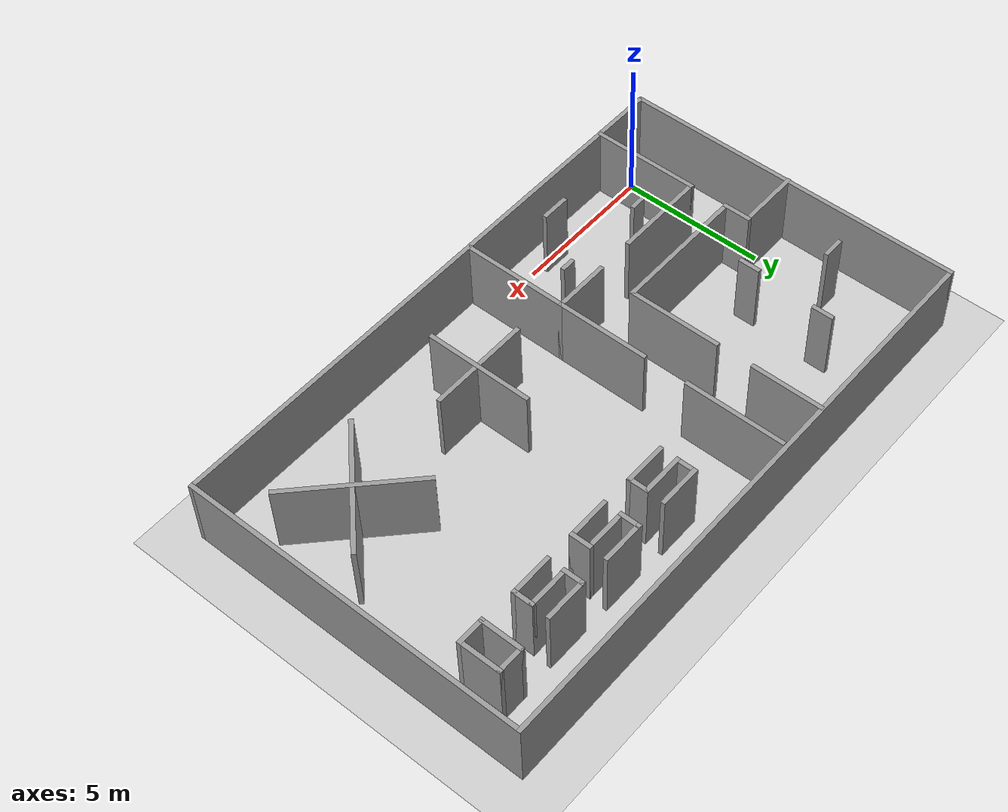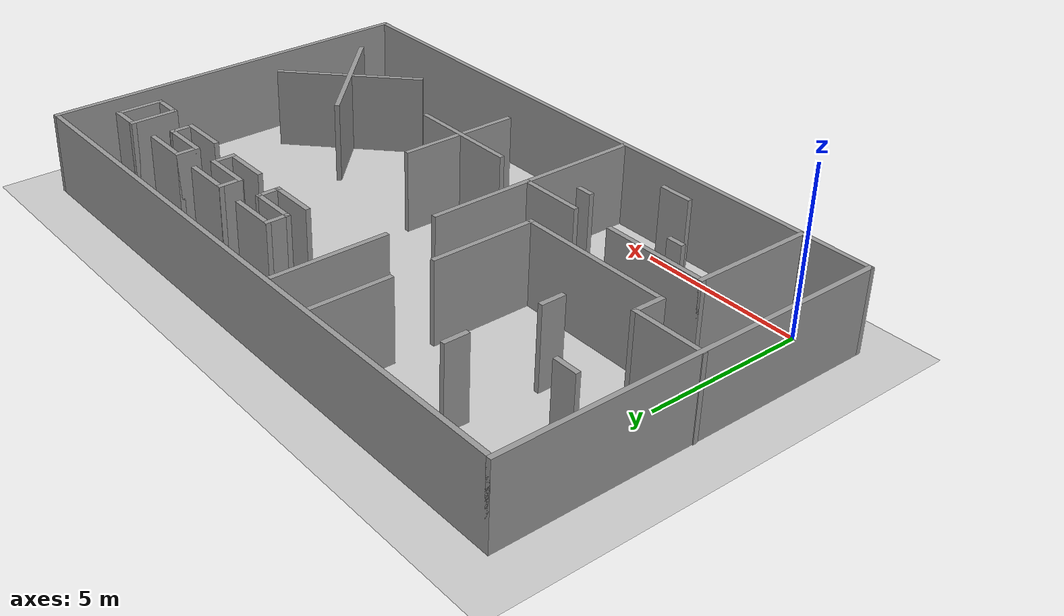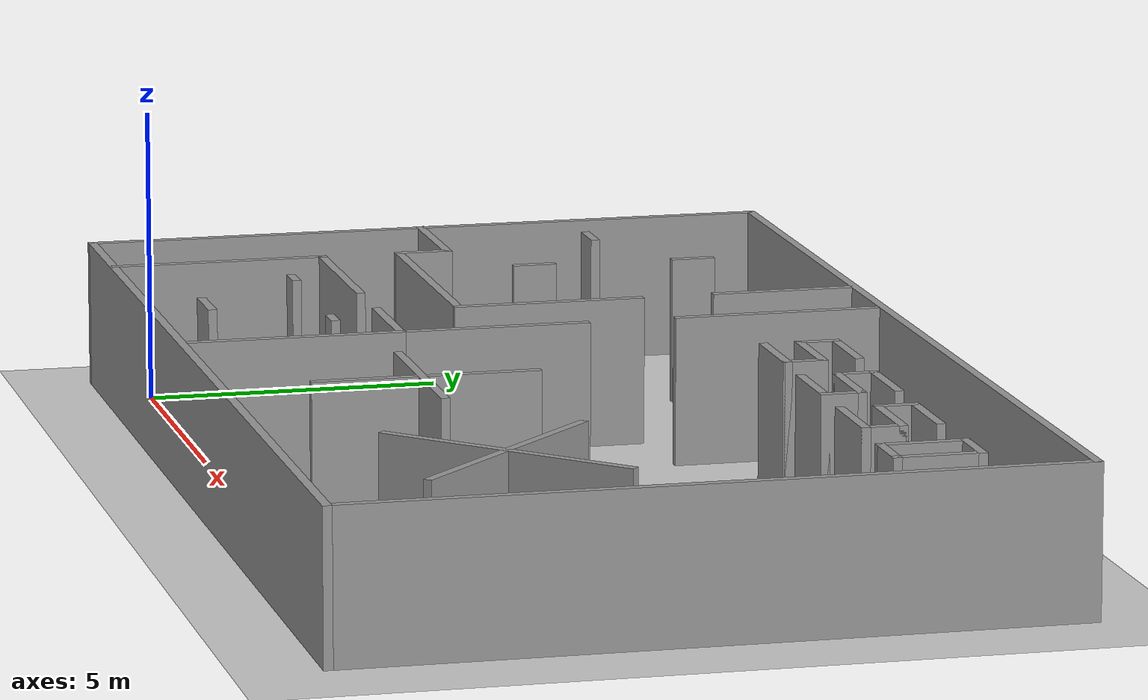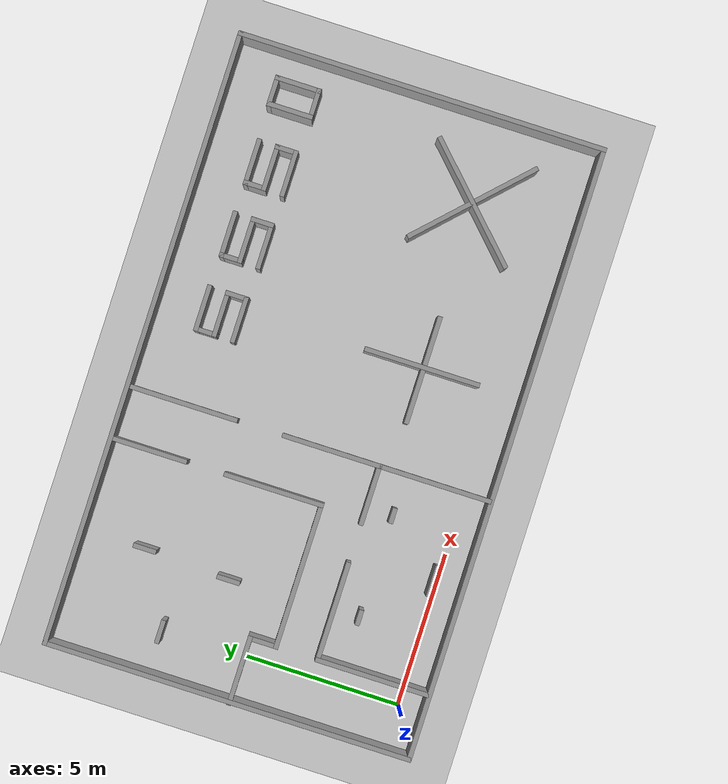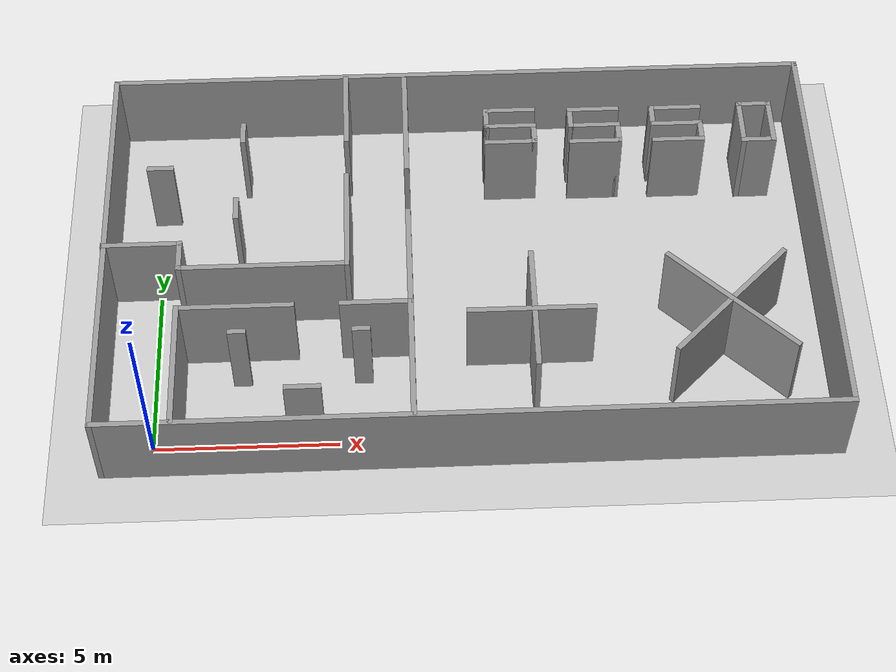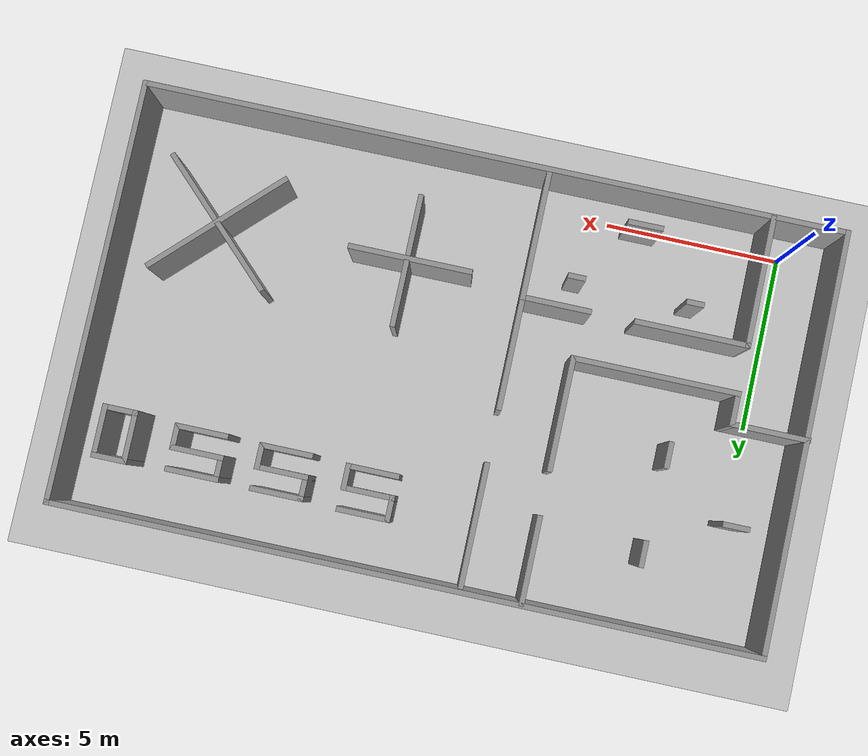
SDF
<sdf version="1.7">
 <world name="default">
  <light name="sun" type="directional">
   <pose>0 0 10 0 -0 0</pose>
   <diffuse>0.8 0.8 0.8 1</diffuse>
   <specular>0.2 0.2 0.2 1</specular>
   <attenuation>
    <range>1000</range>
    <constant>0.9</constant>
    <linear>0.01</linear>
    <quadratic>0.001</quadratic>
   </attenuation>
   <direction>-0.5 0.1 -0.9</direction>
   <spot><inner_angle>0</inner_angle><outer_angle>0</outer_angle><falloff>0</falloff></spot>
  </light>
  <model name="ground_plane">
   <static>1</static>
   <link name="link">
    <collision name="collision">
     <geometry><plane><normal>0 0 1</normal><size>100 100</size></plane></geometry>
     <surface><friction><ode><mu>100</mu><mu2>50</mu2></ode></friction></surface>
    </collision>
    <visual name="visual">
     <cast_shadows>0</cast_shadows>
     <geometry><plane><normal>0 0 1</normal><size>100 100</size></plane></geometry>
     <material>
      <script><uri>file://media/materials/scripts/gazebo.material</uri><name>Gazebo/Grey</name></script>
     </material>
    </visual>
   </link>
  </model>
  <gravity>0 0 -9.8</gravity>
  <magnetic_field>6e-06 2.3e-05 -4.2e-05</magnetic_field>
  <atmosphere type="adiabatic"/>
  <physics type="ode">
   <max_step_size>0.001</max_step_size>
   <real_time_factor>1</real_time_factor>
   <real_time_update_rate>1000</real_time_update_rate>
  </physics>
  <scene><ambient>0.4 0.4 0.4 1</ambient><background>0.7 0.7 0.7 1</background><shadows>1</shadows></scene>
  <audio><device>default</device></audio>
  <spherical_coordinates>
   <surface_model>EARTH_WGS84</surface_model>
   <latitude_deg>0</latitude_deg>
   <longitude_deg>0</longitude_deg>
   <elevation>0</elevation>
   <heading_deg>0</heading_deg>
  </spherical_coordinates>
  <model name="Untitled">
   <pose>8.55926 5.17525 0 0 -0 0</pose>
   <link name="Wall_1">
    <collision name="Wall_1_Collision">
     <geometry><box><size>20 0.15 2.5</size></box></geometry>
     <pose>0 0 1.25 0 -0 0</pose>
    </collision>
    <visual name="Wall_1_Visual">
     <pose>0 0 1.25 0 -0 0</pose>
     <geometry><box><size>20 0.15 2.5</size></box></geometry>
     <material>
      <script><uri>file://media/materials/scripts/gazebo.material</uri><name>Gazebo/Grey</name></script>
      <ambient>1 1 1 1</ambient>
     </material>
     <meta><layer>0</layer></meta>
    </visual>
    <pose>0.012591 5.925 0 0 -0 0</pose>
   </link>
   <link name="Wall_11">
    <collision name="Wall_11_Collision">
     <geometry><box><size>2.25 0.15 2.5</size></box></geometry>
     <pose>0 0 1.25 0 -0 0</pose>
    </collision>
    <visual name="Wall_11_Visual">
     <pose>0 0 1.25 0 -0 0</pose>
     <geometry><box><size>2.25 0.15 2.5</size></box></geometry>
     <material>
      <script><uri>file://media/materials/scripts/gazebo.material</uri><name>Gazebo/Grey</name></script>
      <ambient>1 1 1 1</ambient>
     </material>
     <meta><layer>0</layer></meta>
    </visual>
    <pose>-8.88759 -0.085488 0 0 -0 3.14159</pose>
   </link>
   <link name="Wall_13">
    <collision name="Wall_13_Collision">
     <geometry><box><size>1 0.15 2.5</size></box></geometry>
     <pose>0 0 1.25 0 -0 0</pose>
    </collision>
    <visual name="Wall_13_Visual">
     <pose>0 0 1.25 0 -0 0</pose>
     <geometry><box><size>1 0.15 2.5</size></box></geometry>
     <material>
      <script><uri>file://media/materials/scripts/gazebo.material</uri><name>Gazebo/Grey</name></script>
      <ambient>1 1 1 1</ambient>
     </material>
     <meta><layer>0</layer></meta>
    </visual>
    <pose>-7.83759 -0.510489 0 0 -0 -1.5708</pose>
   </link>
   <link name="Wall_15">
    <collision name="Wall_15_Collision">
     <geometry><box><size>3.75 0.15 2.5</size></box></geometry>
     <pose>0 0 1.25 0 -0 0</pose>
    </collision>
    <visual name="Wall_15_Visual">
     <pose>0 0 1.25 0 -0 0</pose>
     <geometry><box><size>3.75 0.15 2.5</size></box></geometry>
     <material>
      <script><uri>file://media/materials/scripts/gazebo.material</uri><name>Gazebo/Grey</name></script>
      <ambient>1 1 1 1</ambient>
     </material>
     <meta><layer>0</layer></meta>
    </visual>
    <pose>-7.83759 -4.08549 0 0 -0 -1.5708</pose>
   </link>
   <link name="Wall_17">
    <collision name="Wall_17_Collision">
     <geometry><box><size>3.25 0.15 2.5</size></box></geometry>
     <pose>0 0 1.25 0 -0 0</pose>
    </collision>
    <visual name="Wall_17_Visual">
     <pose>0 0 1.25 0 -0 0</pose>
     <geometry><box><size>3.25 0.15 2.5</size></box></geometry>
     <material>
      <script><uri>file://media/materials/scripts/gazebo.material</uri><name>Gazebo/Grey</name></script>
      <ambient>1 1 1 1</ambient>
     </material>
     <meta><layer>0</layer></meta>
    </visual>
    <pose>-6.28759 -2.28549 0 0 -0 0</pose>
   </link>
   <link name="Wall_19">
    <collision name="Wall_19_Collision">
     <geometry><box><size>2 0.15 2.5</size></box></geometry>
     <pose>0 0 1.25 0 -0 0</pose>
    </collision>
    <visual name="Wall_19_Visual">
     <pose>0 0 1.25 0 -0 0</pose>
     <geometry><box><size>2 0.15 2.5</size></box></geometry>
     <material>
      <script><uri>file://media/materials/scripts/gazebo.material</uri><name>Gazebo/Grey</name></script>
      <ambient>1 1 1 1</ambient>
     </material>
     <meta><layer>0</layer></meta>
    </visual>
    <pose>-2.46259 -2.28549 0 0 -0 0</pose>
   </link>
   <link name="Wall_2">
    <collision name="Wall_2_Collision">
     <geometry><box><size>12 0.15 2.5</size></box></geometry>
     <pose>0 0 1.25 0 -0 0</pose>
    </collision>
    <visual name="Wall_2_Visual">
     <pose>0 0 1.25 0 -0 0</pose>
     <geometry><box><size>12 0.15 2.5</size></box></geometry>
     <material>
      <script><uri>file://media/materials/scripts/gazebo.material</uri><name>Gazebo/Grey</name></script>
      <ambient>1 1 1 1</ambient>
     </material>
     <meta><layer>0</layer></meta>
    </visual>
    <pose>9.93759 -0 0 0 -0 -1.5708</pose>
   </link>
   <link name="Wall_20">
    <collision name="Wall_20_Collision">
     <geometry><box><size>3.75 0.15 2.5</size></box></geometry>
     <pose>0 0 1.25 0 -0 0</pose>
    </collision>
    <visual name="Wall_20_Visual">
     <pose>0 0 1.25 0 -0 0</pose>
     <geometry><box><size>3.75 0.15 2.5</size></box></geometry>
     <material>
      <script><uri>file://media/materials/scripts/gazebo.material</uri><name>Gazebo/Grey</name></script>
      <ambient>1 1 1 1</ambient>
     </material>
     <meta><layer>0</layer></meta>
    </visual>
    <pose>-1.53759 -4.08549 0 0 -0 -1.5708</pose>
   </link>
   <link name="Wall_22">
    <collision name="Wall_22_Collision">
     <geometry><box><size>4.75 0.15 2.5</size></box></geometry>
     <pose>0 0 1.25 0 -0 0</pose>
    </collision>
    <visual name="Wall_22_Visual">
     <pose>0 0 1.25 0 -0 0</pose>
     <geometry><box><size>4.75 0.15 2.5</size></box></geometry>
     <material>
      <script><uri>file://media/materials/scripts/gazebo.material</uri><name>Gazebo/Grey</name></script>
      <ambient>1 1 1 1</ambient>
     </material>
     <meta><layer>0</layer></meta>
    </visual>
    <pose>-5.53759 -0.935488 0 0 -0 0</pose>
   </link>
   <link name="Wall_23">
    <collision name="Wall_23_Collision">
     <geometry><box><size>3.25 0.15 2.5</size></box></geometry>
     <pose>0 0 1.25 0 -0 0</pose>
    </collision>
    <visual name="Wall_23_Visual">
     <pose>0 0 1.25 0 -0 0</pose>
     <geometry><box><size>3.25 0.15 2.5</size></box></geometry>
     <material>
      <script><uri>file://media/materials/scripts/gazebo.material</uri><name>Gazebo/Grey</name></script>
      <ambient>1 1 1 1</ambient>
     </material>
     <meta><layer>0</layer></meta>
    </visual>
    <pose>-3.23759 0.614511 0 0 -0 1.5708</pose>
   </link>
   <link name="Wall_25">
    <collision name="Wall_25_Collision">
     <geometry><box><size>2.5 0.15 2.5</size></box></geometry>
     <pose>0 0 1.25 0 -0 0</pose>
    </collision>
    <visual name="Wall_25_Visual">
     <pose>0 0 1.25 0 -0 0</pose>
     <geometry><box><size>2.5 0.15 2.5</size></box></geometry>
     <material>
      <script><uri>file://media/materials/scripts/gazebo.material</uri><name>Gazebo/Grey</name></script>
      <ambient>1 1 1 1</ambient>
     </material>
     <meta><layer>0</layer></meta>
    </visual>
    <pose>-3.23759 4.68951 0 0 -0 1.5708</pose>
   </link>
   <link name="Wall_27">
    <collision name="Wall_27_Collision">
     <geometry><box><size>3.25 0.15 2.5</size></box></geometry>
     <pose>0 0 1.25 0 -0 0</pose>
    </collision>
    <visual name="Wall_27_Visual">
     <pose>0 0 1.25 0 -0 0</pose>
     <geometry><box><size>3.25 0.15 2.5</size></box></geometry>
     <material>
      <script><uri>file://media/materials/scripts/gazebo.material</uri><name>Gazebo/Grey</name></script>
      <ambient>1 1 1 1</ambient>
     </material>
     <meta><layer>0</layer></meta>
    </visual>
    <pose>-1.53759 -0.735488 0 0 -0 1.5708</pose>
   </link>
   <link name="Wall_29">
    <collision name="Wall_29_Collision">
     <geometry><box><size>3.5 0.15 2.5</size></box></geometry>
     <pose>0 0 1.25 0 -0 0</pose>
    </collision>
    <visual name="Wall_29_Visual">
     <pose>0 0 1.25 0 -0 0</pose>
     <geometry><box><size>3.5 0.15 2.5</size></box></geometry>
     <material>
      <script><uri>file://media/materials/scripts/gazebo.material</uri><name>Gazebo/Grey</name></script>
      <ambient>1 1 1 1</ambient>
     </material>
     <meta><layer>0</layer></meta>
    </visual>
    <pose>-1.53759 4.08951 0 0 -0 1.5708</pose>
   </link>
   <link name="Wall_3">
    <collision name="Wall_3_Collision">
     <geometry><box><size>20 0.15 2.5</size></box></geometry>
     <pose>0 0 1.25 0 -0 0</pose>
    </collision>
    <visual name="Wall_3_Visual">
     <pose>0 0 1.25 0 -0 0</pose>
     <geometry><box><size>20 0.15 2.5</size></box></geometry>
     <material>
      <script><uri>file://media/materials/scripts/gazebo.material</uri><name>Gazebo/Grey</name></script>
      <ambient>1 1 1 1</ambient>
     </material>
     <meta><layer>0</layer></meta>
    </visual>
    <pose>0.012591 -5.925 0 0 -0 3.14159</pose>
   </link>
   <link name="Wall_31">
    <collision name="Wall_31_Collision">
     <geometry><box><size>1.5 0.15 2.5</size></box></geometry>
     <pose>0 0 1.25 0 -0 0</pose>
    </collision>
    <visual name="Wall_31_Visual">
     <pose>0 0 1.25 0 -0 0</pose>
     <geometry><box><size>1.5 0.15 2.5</size></box></geometry>
     <material>
      <script><uri>file://media/materials/scripts/gazebo.material</uri><name>Gazebo/Grey</name></script>
      <ambient>1 1 1 1</ambient>
     </material>
     <meta><layer>0</layer></meta>
    </visual>
    <pose>1.46248 4.43539 0 0 -0 3.14159</pose>
   </link>
   <link name="Wall_32">
    <collision name="Wall_32_Collision">
     <geometry><box><size>0.75 0.15 2.5</size></box></geometry>
     <pose>0 0 1.25 0 -0 0</pose>
    </collision>
    <visual name="Wall_32_Visual">
     <pose>0 0 1.25 0 -0 0</pose>
     <geometry><box><size>0.75 0.15 2.5</size></box></geometry>
     <material>
      <script><uri>file://media/materials/scripts/gazebo.material</uri><name>Gazebo/Grey</name></script>
      <ambient>1 1 1 1</ambient>
     </material>
     <meta><layer>0</layer></meta>
    </visual>
    <pose>0.787482 4.13539 0 0 -0 -1.5708</pose>
   </link>
   <link name="Wall_33">
    <collision name="Wall_33_Collision">
     <geometry><box><size>1.5 0.15 2.5</size></box></geometry>
     <pose>0 0 1.25 0 -0 0</pose>
    </collision>
    <visual name="Wall_33_Visual">
     <pose>0 0 1.25 0 -0 0</pose>
     <geometry><box><size>1.5 0.15 2.5</size></box></geometry>
     <material>
      <script><uri>file://media/materials/scripts/gazebo.material</uri><name>Gazebo/Grey</name></script>
      <ambient>1 1 1 1</ambient>
     </material>
     <meta><layer>0</layer></meta>
    </visual>
    <pose>1.46248 3.83539 0 0 -0 0</pose>
   </link>
   <link name="Wall_34">
    <collision name="Wall_34_Collision">
     <geometry><box><size>0.75 0.15 2.5</size></box></geometry>
     <pose>0 0 1.25 0 -0 0</pose>
    </collision>
    <visual name="Wall_34_Visual">
     <pose>0 0 1.25 0 -0 0</pose>
     <geometry><box><size>0.75 0.15 2.5</size></box></geometry>
     <material>
      <script><uri>file://media/materials/scripts/gazebo.material</uri><name>Gazebo/Grey</name></script>
      <ambient>1 1 1 1</ambient>
     </material>
     <meta><layer>0</layer></meta>
    </visual>
    <pose>2.13748 3.53539 0 0 -0 -1.5708</pose>
   </link>
   <link name="Wall_35">
    <collision name="Wall_35_Collision">
     <geometry><box><size>1.5 0.15 2.5</size></box></geometry>
     <pose>0 0 1.25 0 -0 0</pose>
    </collision>
    <visual name="Wall_35_Visual">
     <pose>0 0 1.25 0 -0 0</pose>
     <geometry><box><size>1.5 0.15 2.5</size></box></geometry>
     <material>
      <script><uri>file://media/materials/scripts/gazebo.material</uri><name>Gazebo/Grey</name></script>
      <ambient>1 1 1 1</ambient>
     </material>
     <meta><layer>0</layer></meta>
    </visual>
    <pose>1.46248 3.23539 0 0 -0 3.14159</pose>
   </link>
   <link name="Wall_37">
    <collision name="Wall_37_Collision">
     <geometry><box><size>1.5 0.15 2.5</size></box></geometry>
     <pose>0 0 1.25 0 -0 0</pose>
    </collision>
    <visual name="Wall_37_Visual">
     <pose>0 0 1.25 0 -0 0</pose>
     <geometry><box><size>1.5 0.15 2.5</size></box></geometry>
     <material>
      <script><uri>file://media/materials/scripts/gazebo.material</uri><name>Gazebo/Grey</name></script>
      <ambient>1 1 1 1</ambient>
     </material>
     <meta><layer>0</layer></meta>
    </visual>
    <pose>3.8831 4.38219 0 0 -0 3.14159</pose>
   </link>
   <link name="Wall_38">
    <collision name="Wall_38_Collision">
     <geometry><box><size>0.75 0.15 2.5</size></box></geometry>
     <pose>0 0 1.25 0 -0 0</pose>
    </collision>
    <visual name="Wall_38_Visual">
     <pose>0 0 1.25 0 -0 0</pose>
     <geometry><box><size>0.75 0.15 2.5</size></box></geometry>
     <material>
      <script><uri>file://media/materials/scripts/gazebo.material</uri><name>Gazebo/Grey</name></script>
      <ambient>1 1 1 1</ambient>
     </material>
     <meta><layer>0</layer></meta>
    </visual>
    <pose>3.2081 4.08219 0 0 -0 -1.5708</pose>
   </link>
   <link name="Wall_39">
    <collision name="Wall_39_Collision">
     <geometry><box><size>1.5 0.15 2.5</size></box></geometry>
     <pose>0 0 1.25 0 -0 0</pose>
    </collision>
    <visual name="Wall_39_Visual">
     <pose>0 0 1.25 0 -0 0</pose>
     <geometry><box><size>1.5 0.15 2.5</size></box></geometry>
     <material>
      <script><uri>file://media/materials/scripts/gazebo.material</uri><name>Gazebo/Grey</name></script>
      <ambient>1 1 1 1</ambient>
     </material>
     <meta><layer>0</layer></meta>
    </visual>
    <pose>3.8831 3.78219 0 0 -0 0</pose>
   </link>
   <link name="Wall_4">
    <collision name="Wall_4_Collision">
     <geometry><box><size>12 0.15 2.5</size></box></geometry>
     <pose>0 0 1.25 0 -0 0</pose>
    </collision>
    <visual name="Wall_4_Visual">
     <pose>0 0 1.25 0 -0 0</pose>
     <geometry><box><size>12 0.15 2.5</size></box></geometry>
     <material>
      <script><uri>file://media/materials/scripts/gazebo.material</uri><name>Gazebo/Grey</name></script>
      <ambient>1 1 1 1</ambient>
     </material>
     <meta><layer>0</layer></meta>
    </visual>
    <pose>-9.91241 -0 0 0 -0 1.5708</pose>
   </link>
   <link name="Wall_40">
    <collision name="Wall_40_Collision">
     <geometry><box><size>0.75 0.15 2.5</size></box></geometry>
     <pose>0 0 1.25 0 -0 0</pose>
    </collision>
    <visual name="Wall_40_Visual">
     <pose>0 0 1.25 0 -0 0</pose>
     <geometry><box><size>0.75 0.15 2.5</size></box></geometry>
     <material>
      <script><uri>file://media/materials/scripts/gazebo.material</uri><name>Gazebo/Grey</name></script>
      <ambient>1 1 1 1</ambient>
     </material>
     <meta><layer>0</layer></meta>
    </visual>
    <pose>4.5581 3.48219 0 0 -0 -1.5708</pose>
   </link>
   <link name="Wall_41">
    <collision name="Wall_41_Collision">
     <geometry><box><size>1.5 0.15 2.5</size></box></geometry>
     <pose>0 0 1.25 0 -0 0</pose>
    </collision>
    <visual name="Wall_41_Visual">
     <pose>0 0 1.25 0 -0 0</pose>
     <geometry><box><size>1.5 0.15 2.5</size></box></geometry>
     <material>
      <script><uri>file://media/materials/scripts/gazebo.material</uri><name>Gazebo/Grey</name></script>
      <ambient>1 1 1 1</ambient>
     </material>
     <meta><layer>0</layer></meta>
    </visual>
    <pose>3.8831 3.18219 0 0 -0 3.14159</pose>
   </link>
   <link name="Wall_43">
    <collision name="Wall_43_Collision">
     <geometry><box><size>1.5 0.15 2.5</size></box></geometry>
     <pose>0 0 1.25 0 -0 0</pose>
    </collision>
    <visual name="Wall_43_Visual">
     <pose>0 0 1.25 0 -0 0</pose>
     <geometry><box><size>1.5 0.15 2.5</size></box></geometry>
     <material>
      <script><uri>file://media/materials/scripts/gazebo.material</uri><name>Gazebo/Grey</name></script>
      <ambient>1 1 1 1</ambient>
     </material>
     <meta><layer>0</layer></meta>
    </visual>
    <pose>6.25052 4.35559 0 0 -0 3.14159</pose>
   </link>
   <link name="Wall_44">
    <collision name="Wall_44_Collision">
     <geometry><box><size>0.75 0.15 2.5</size></box></geometry>
     <pose>0 0 1.25 0 -0 0</pose>
    </collision>
    <visual name="Wall_44_Visual">
     <pose>0 0 1.25 0 -0 0</pose>
     <geometry><box><size>0.75 0.15 2.5</size></box></geometry>
     <material>
      <script><uri>file://media/materials/scripts/gazebo.material</uri><name>Gazebo/Grey</name></script>
      <ambient>1 1 1 1</ambient>
     </material>
     <meta><layer>0</layer></meta>
    </visual>
    <pose>5.57552 4.05559 0 0 -0 -1.5708</pose>
   </link>
   <link name="Wall_45">
    <collision name="Wall_45_Collision">
     <geometry><box><size>1.5 0.15 2.5</size></box></geometry>
     <pose>0 0 1.25 0 -0 0</pose>
    </collision>
    <visual name="Wall_45_Visual">
     <pose>0 0 1.25 0 -0 0</pose>
     <geometry><box><size>1.5 0.15 2.5</size></box></geometry>
     <material>
      <script><uri>file://media/materials/scripts/gazebo.material</uri><name>Gazebo/Grey</name></script>
      <ambient>1 1 1 1</ambient>
     </material>
     <meta><layer>0</layer></meta>
    </visual>
    <pose>6.25052 3.75559 0 0 -0 0</pose>
   </link>
   <link name="Wall_46">
    <collision name="Wall_46_Collision">
     <geometry><box><size>0.75 0.15 2.5</size></box></geometry>
     <pose>0 0 1.25 0 -0 0</pose>
    </collision>
    <visual name="Wall_46_Visual">
     <pose>0 0 1.25 0 -0 0</pose>
     <geometry><box><size>0.75 0.15 2.5</size></box></geometry>
     <material>
      <script><uri>file://media/materials/scripts/gazebo.material</uri><name>Gazebo/Grey</name></script>
      <ambient>1 1 1 1</ambient>
     </material>
     <meta><layer>0</layer></meta>
    </visual>
    <pose>6.92552 3.45559 0 0 -0 -1.5708</pose>
   </link>
   <link name="Wall_47">
    <collision name="Wall_47_Collision">
     <geometry><box><size>1.5 0.15 2.5</size></box></geometry>
     <pose>0 0 1.25 0 -0 0</pose>
    </collision>
    <visual name="Wall_47_Visual">
     <pose>0 0 1.25 0 -0 0</pose>
     <geometry><box><size>1.5 0.15 2.5</size></box></geometry>
     <material>
      <script><uri>file://media/materials/scripts/gazebo.material</uri><name>Gazebo/Grey</name></script>
      <ambient>1 1 1 1</ambient>
     </material>
     <meta><layer>0</layer></meta>
    </visual>
    <pose>6.25052 3.15559 0 0 -0 3.14159</pose>
   </link>
   <link name="Wall_49">
    <collision name="Wall_49_Collision">
     <geometry><box><size>1.5 0.15 2.5</size></box></geometry>
     <pose>0 0 1.25 0 -0 0</pose>
    </collision>
    <visual name="Wall_49_Visual">
     <pose>0 0 1.25 0 -0 0</pose>
     <geometry><box><size>1.5 0.15 2.5</size></box></geometry>
     <material>
      <script><uri>file://media/materials/scripts/gazebo.material</uri><name>Gazebo/Grey</name></script>
      <ambient>1 1 1 1</ambient>
     </material>
     <meta><layer>0</layer></meta>
    </visual>
    <pose>8.12253 3.73379 0 0 -0 -1.5708</pose>
   </link>
   <link name="Wall_53">
    <collision name="Wall_53_Collision">
     <geometry><box><size>1 0.15 2.5</size></box></geometry>
     <pose>0 0 1.25 0 -0 0</pose>
    </collision>
    <visual name="Wall_53_Visual">
     <pose>0 0 1.25 0 -0 0</pose>
     <geometry><box><size>1 0.15 2.5</size></box></geometry>
     <material>
      <script><uri>file://media/materials/scripts/gazebo.material</uri><name>Gazebo/Grey</name></script>
      <ambient>1 1 1 1</ambient>
     </material>
     <meta><layer>0</layer></meta>
    </visual>
    <pose>8.54753 4.40879 0 0 -0 0</pose>
   </link>
   <link name="Wall_54">
    <collision name="Wall_54_Collision">
     <geometry><box><size>1.5 0.15 2.5</size></box></geometry>
     <pose>0 0 1.25 0 -0 0</pose>
    </collision>
    <visual name="Wall_54_Visual">
     <pose>0 0 1.25 0 -0 0</pose>
     <geometry><box><size>1.5 0.15 2.5</size></box></geometry>
     <material>
      <script><uri>file://media/materials/scripts/gazebo.material</uri><name>Gazebo/Grey</name></script>
      <ambient>1 1 1 1</ambient>
     </material>
     <meta><layer>0</layer></meta>
    </visual>
    <pose>8.97253 3.73379 0 0 -0 -1.5708</pose>
   </link>
   <link name="Wall_55">
    <collision name="Wall_55_Collision">
     <geometry><box><size>1 0.15 2.5</size></box></geometry>
     <pose>0 0 1.25 0 -0 0</pose>
    </collision>
    <visual name="Wall_55_Visual">
     <pose>0 0 1.25 0 -0 0</pose>
     <geometry><box><size>1 0.15 2.5</size></box></geometry>
     <material>
      <script><uri>file://media/materials/scripts/gazebo.material</uri><name>Gazebo/Grey</name></script>
      <ambient>1 1 1 1</ambient>
     </material>
     <meta><layer>0</layer></meta>
    </visual>
    <pose>8.54753 3.05879 0 0 -0 3.14159</pose>
   </link>
   <link name="Wall_57">
    <collision name="Wall_57_Collision">
     <geometry><box><size>3.5 0.15 2.5</size></box></geometry>
     <pose>0 0 1.25 0 -0 0</pose>
    </collision>
    <visual name="Wall_57_Visual">
     <pose>0 0 1.25 0 -0 0</pose>
     <geometry><box><size>3.5 0.15 2.5</size></box></geometry>
     <material>
      <script><uri>file://media/materials/scripts/gazebo.material</uri><name>Gazebo/Grey</name></script>
      <ambient>1 1 1 1</ambient>
     </material>
     <meta><layer>0</layer></meta>
    </visual>
    <pose>1.71107 -2.66686 0 0 -0 0</pose>
   </link>
   <link name="Wall_59">
    <collision name="Wall_59_Collision">
     <geometry><box><size>3.75 0.15 2.5</size></box></geometry>
     <pose>0 0 1.25 0 -0 0</pose>
    </collision>
    <visual name="Wall_59_Visual">
     <pose>0 0 1.25 0 -0 0</pose>
     <geometry><box><size>3.75 0.15 2.5</size></box></geometry>
     <material>
      <script><uri>file://media/materials/scripts/gazebo.material</uri><name>Gazebo/Grey</name></script>
      <ambient>1 1 1 1</ambient>
     </material>
     <meta><layer>0</layer></meta>
    </visual>
    <pose>1.79168 -2.60485 0 0 -0 -1.5708</pose>
   </link>
   <link name="Wall_65">
    <collision name="Wall_65_Collision">
     <geometry><box><size>4.57184 0.15 2.5</size></box></geometry>
     <pose>0 0 1.25 0 -0 0</pose>
    </collision>
    <visual name="Wall_65_Visual">
     <pose>0 0 1.25 0 -0 0</pose>
     <geometry><box><size>4.57184 0.15 2.5</size></box></geometry>
     <material>
      <script><uri>file://media/materials/scripts/gazebo.material</uri><name>Gazebo/Grey</name></script>
      <ambient>1 1 1 1</ambient>
     </material>
     <meta><layer>0</layer></meta>
    </visual>
    <pose>7.1295 -2.54105 0 0 -0 -0.776891</pose>
   </link>
   <link name="Wall_67">
    <collision name="Wall_67_Collision">
     <geometry><box><size>4.57184 0.15 2.5</size></box></geometry>
     <pose>0 0 1.25 0 -0 0</pose>
    </collision>
    <visual name="Wall_67_Visual">
     <pose>0 0 1.25 0 -0 0</pose>
     <geometry><box><size>4.57184 0.15 2.5</size></box></geometry>
     <material>
      <script><uri>file://media/materials/scripts/gazebo.material</uri><name>Gazebo/Grey</name></script>
      <ambient>1 1 1 1</ambient>
     </material>
     <meta><layer>0</layer></meta>
    </visual>
    <pose>7.1295 -2.54105 0 0 -0 -2.3647</pose>
   </link>
   <link name="Wall_69">
    <collision name="Wall_69_Collision">
     <geometry><box><size>0.75 0.15 2.5</size></box></geometry>
     <pose>0 0 1.25 0 -0 0</pose>
    </collision>
    <visual name="Wall_69_Visual">
     <pose>0 0 1.25 0 -0 0</pose>
     <geometry><box><size>0.75 0.15 2.5</size></box></geometry>
     <material>
      <script><uri>file://media/materials/scripts/gazebo.material</uri><name>Gazebo/Grey</name></script>
      <ambient>1 1 1 1</ambient>
     </material>
     <meta><layer>0</layer></meta>
    </visual>
    <pose>-6.18838 3.86939 0 0 -0 -1.5708</pose>
   </link>
   <link name="Wall_71">
    <collision name="Wall_71_Collision">
     <geometry><box><size>0.75 0.15 2.5</size></box></geometry>
     <pose>0 0 1.25 0 -0 0</pose>
    </collision>
    <visual name="Wall_71_Visual">
     <pose>0 0 1.25 0 -0 0</pose>
     <geometry><box><size>0.75 0.15 2.5</size></box></geometry>
     <material>
      <script><uri>file://media/materials/scripts/gazebo.material</uri><name>Gazebo/Grey</name></script>
      <ambient>1 1 1 1</ambient>
     </material>
     <meta><layer>0</layer></meta>
    </visual>
    <pose>-6.32138 1.10297 0 0 -0 -1.5708</pose>
   </link>
   <link name="Wall_73">
    <collision name="Wall_73_Collision">
     <geometry><box><size>0.75 0.15 2.5</size></box></geometry>
     <pose>0 0 1.25 0 -0 0</pose>
    </collision>
    <visual name="Wall_73_Visual">
     <pose>0 0 1.25 0 -0 0</pose>
     <geometry><box><size>0.75 0.15 2.5</size></box></geometry>
     <material>
      <script><uri>file://media/materials/scripts/gazebo.material</uri><name>Gazebo/Grey</name></script>
      <ambient>1 1 1 1</ambient>
     </material>
     <meta><layer>0</layer></meta>
    </visual>
    <pose>-8.4952 2.62657 0 0 -0 0</pose>
   </link>
   <link name="Wall_75">
    <collision name="Wall_75_Collision">
     <geometry><box><size>0.5 0.15 2.5</size></box></geometry>
     <pose>0 0 1.25 0 -0 0</pose>
    </collision>
    <visual name="Wall_75_Visual">
     <pose>0 0 1.25 0 -0 0</pose>
     <geometry><box><size>0.5 0.15 2.5</size></box></geometry>
     <material>
      <script><uri>file://media/materials/scripts/gazebo.material</uri><name>Gazebo/Grey</name></script>
      <ambient>1 1 1 1</ambient>
     </material>
     <meta><layer>0</layer></meta>
    </visual>
    <pose>-6.19958 -3.11907 0 0 -0 0</pose>
   </link>
   <link name="Wall_77">
    <collision name="Wall_77_Collision">
     <geometry><box><size>0.5 0.15 2.5</size></box></geometry>
     <pose>0 0 1.25 0 -0 0</pose>
    </collision>
    <visual name="Wall_77_Visual">
     <pose>0 0 1.25 0 -0 0</pose>
     <geometry><box><size>0.5 0.15 2.5</size></box></geometry>
     <material>
      <script><uri>file://media/materials/scripts/gazebo.material</uri><name>Gazebo/Grey</name></script>
      <ambient>1 1 1 1</ambient>
     </material>
     <meta><layer>0</layer></meta>
    </visual>
    <pose>-2.87456 -3.14567 0 0 -0 0</pose>
   </link>
   <link name="Wall_79">
    <collision name="Wall_79_Collision">
     <geometry><box><size>1 0.15 2.5</size></box></geometry>
     <pose>0 0 1.25 0 -0 0</pose>
    </collision>
    <visual name="Wall_79_Visual">
     <pose>0 0 1.25 0 -0 0</pose>
     <geometry><box><size>1 0.15 2.5</size></box></geometry>
     <material>
      <script><uri>file://media/materials/scripts/gazebo.material</uri><name>Gazebo/Grey</name></script>
      <ambient>1 1 1 1</ambient>
     </material>
     <meta><layer>0</layer></meta>
    </visual>
    <pose>-4.43337 -4.95448 0 0 -0 0</pose>
   </link>
   <static>1</static>
  </model>
 </world>
</sdf>
